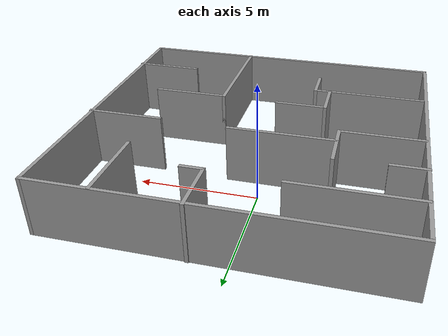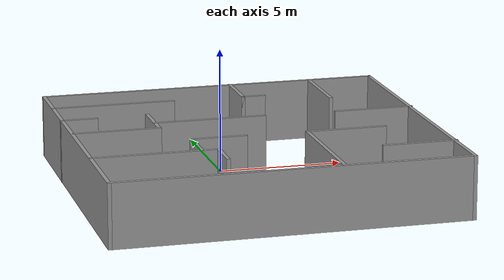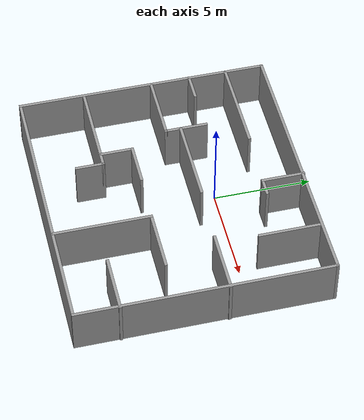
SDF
<?xml version='1.0'?>
<sdf version='1.7'>
  <model name='maze'>
    <pose>0.626394 -2.30371 0 0 -0 0</pose>
    <link name='Wall_11'>
      <collision name='Wall_11_Collision'>
        <geometry>
          <box>
            <size>5 0.15 2.5</size>
          </box>
        </geometry>
        <pose>0 0 1.25 0 -0 0</pose>
      </collision>
      <visual name='Wall_11_Visual'>
        <pose>0 0 1.25 0 -0 0</pose>
        <geometry>
          <box>
            <size>5 0.15 2.5</size>
          </box>
        </geometry>
        <material>
          <script>
            <uri>file://media/materials/scripts/gazebo.material</uri>
            <name>Gazebo/Grey</name>
          </script>
          <ambient>1 1 1 1</ambient>
        </material>
        <meta>
          <layer>0</layer>
        </meta>
      </visual>
      <pose>-4.47892 -3.12486 0 0 -0 0</pose>
    </link>
    <link name='Wall_12'>
      <collision name='Wall_12_Collision'>
        <geometry>
          <box>
            <size>1.5 0.15 2.5</size>
          </box>
        </geometry>
        <pose>0 0 1.25 0 -0 0</pose>
      </collision>
      <visual name='Wall_12_Visual'>
        <pose>0 0 1.25 0 -0 0</pose>
        <geometry>
          <box>
            <size>1.5 0.15 2.5</size>
          </box>
        </geometry>
        <material>
          <script>
            <uri>file://media/materials/scripts/gazebo.material</uri>
            <name>Gazebo/Grey</name>
          </script>
          <ambient>1 1 1 1</ambient>
        </material>
        <meta>
          <layer>0</layer>
        </meta>
      </visual>
      <pose>-2.05392 -3.79985 0 0 -0 -1.5708</pose>
    </link>
    <link name='Wall_14'>
      <collision name='Wall_14_Collision'>
        <geometry>
          <box>
            <size>3.5 0.15 2.5</size>
          </box>
        </geometry>
        <pose>0 0 1.25 0 -0 0</pose>
      </collision>
      <visual name='Wall_14_Visual'>
        <pose>0 0 1.25 0 -0 0</pose>
        <geometry>
          <box>
            <size>3.5 0.15 2.5</size>
          </box>
        </geometry>
        <material>
          <script>
            <uri>file://media/materials/scripts/gazebo.material</uri>
            <name>Gazebo/Grey</name>
          </script>
          <ambient>1 1 1 1</ambient>
        </material>
        <meta>
          <layer>0</layer>
        </meta>
      </visual>
      <pose>-5.19461 0.442885 0 0 -0 0</pose>
    </link>
    <link name='Wall_15'>
      <collision name='Wall_15_Collision'>
        <geometry>
          <box>
            <size>2.25 0.15 2.5</size>
          </box>
        </geometry>
        <pose>0 0 1.25 0 -0 0</pose>
      </collision>
      <visual name='Wall_15_Visual'>
        <pose>0 0 1.25 0 -0 0</pose>
        <geometry>
          <box>
            <size>2.25 0.15 2.5</size>
          </box>
        </geometry>
        <material>
          <script>
            <uri>file://media/materials/scripts/gazebo.material</uri>
            <name>Gazebo/Grey</name>
          </script>
          <ambient>1 1 1 1</ambient>
        </material>
        <meta>
          <layer>0</layer>
        </meta>
      </visual>
      <pose>-3.51961 1.49289 0 0 -0 1.5708</pose>
    </link>
    <link name='Wall_17'>
      <collision name='Wall_17_Collision'>
        <geometry>
          <box>
            <size>5 0.15 2.5</size>
          </box>
        </geometry>
        <pose>0 0 1.25 0 -0 0</pose>
      </collision>
      <visual name='Wall_17_Visual'>
        <pose>0 0 1.25 0 -0 0</pose>
        <geometry>
          <box>
            <size>5 0.15 2.5</size>
          </box>
        </geometry>
        <material>
          <script>
            <uri>file://media/materials/scripts/gazebo.material</uri>
            <name>Gazebo/Grey</name>
          </script>
          <ambient>1 1 1 1</ambient>
        </material>
        <meta>
          <layer>0</layer>
        </meta>
      </visual>
      <pose>1.86106 -3.976 0 0 -0 1.5708</pose>
    </link>
    <link name='Wall_18'>
      <collision name='Wall_18_Collision'>
        <geometry>
          <box>
            <size>3.25 0.15 2.5</size>
          </box>
        </geometry>
        <pose>0 0 1.25 0 -0 0</pose>
      </collision>
      <visual name='Wall_18_Visual'>
        <pose>0 0 1.25 0 -0 0</pose>
        <geometry>
          <box>
            <size>3.25 0.15 2.5</size>
          </box>
        </geometry>
        <material>
          <script>
            <uri>file://media/materials/scripts/gazebo.material</uri>
            <name>Gazebo/Grey</name>
          </script>
          <ambient>1 1 1 1</ambient>
        </material>
        <meta>
          <layer>0</layer>
        </meta>
      </visual>
      <pose>3.41106 -1.551 0 0 -0 0</pose>
    </link>
    <link name='Wall_2'>
      <collision name='Wall_2_Collision'>
        <geometry>
          <box>
            <size>14 0.15 2.5</size>
          </box>
        </geometry>
        <pose>0 0 1.25 0 -0 0</pose>
      </collision>
      <visual name='Wall_2_Visual'>
        <pose>0 0 1.25 0 -0 0</pose>
        <geometry>
          <box>
            <size>14 0.15 2.5</size>
          </box>
        </geometry>
        <material>
          <script>
            <uri>file://media/materials/scripts/gazebo.material</uri>
            <name>Gazebo/Grey</name>
          </script>
          <ambient>1 1 1 1</ambient>
        </material>
        <meta>
          <layer>0</layer>
        </meta>
      </visual>
      <pose>-0.021394 -6.44629 0 0 -0 0</pose>
    </link>
    <link name='Wall_20'>
      <collision name='Wall_20_Collision'>
        <geometry>
          <box>
            <size>4.5 0.15 2.5</size>
          </box>
        </geometry>
        <pose>0 0 1.25 0 -0 0</pose>
      </collision>
      <visual name='Wall_20_Visual'>
        <pose>0 0 1.25 0 -0 0</pose>
        <geometry>
          <box>
            <size>4.5 0.15 2.5</size>
          </box>
        </geometry>
        <material>
          <script>
            <uri>file://media/materials/scripts/gazebo.material</uri>
            <name>Gazebo/Grey</name>
          </script>
          <ambient>1 1 1 1</ambient>
        </material>
        <meta>
          <layer>0</layer>
        </meta>
      </visual>
      <pose>-1.2984 1.21475 0 0 -0 0</pose>
    </link>
    <link name='Wall_22'>
      <collision name='Wall_22_Collision'>
        <geometry>
          <box>
            <size>2.25 0.15 2.5</size>
          </box>
        </geometry>
        <pose>0 0 1.25 0 -0 0</pose>
      </collision>
      <visual name='Wall_22_Visual'>
        <pose>0 0 1.25 0 -0 0</pose>
        <geometry>
          <box>
            <size>2.25 0.15 2.5</size>
          </box>
        </geometry>
        <material>
          <script>
            <uri>file://media/materials/scripts/gazebo.material</uri>
            <name>Gazebo/Grey</name>
          </script>
          <ambient>1 1 1 1</ambient>
        </material>
        <meta>
          <layer>0</layer>
        </meta>
      </visual>
      <pose>0.866206 5.39629 0 0 -0 -1.5708</pose>
    </link>
    <link name='Wall_23'>
      <collision name='Wall_23_Collision'>
        <geometry>
          <box>
            <size>1 0.15 2.5</size>
          </box>
        </geometry>
        <pose>0 0 1.25 0 -0 0</pose>
      </collision>
      <visual name='Wall_23_Visual'>
        <pose>0 0 1.25 0 -0 0</pose>
        <geometry>
          <box>
            <size>1 0.15 2.5</size>
          </box>
        </geometry>
        <material>
          <script>
            <uri>file://media/materials/scripts/gazebo.material</uri>
            <name>Gazebo/Grey</name>
          </script>
          <ambient>1 1 1 1</ambient>
        </material>
        <meta>
          <layer>0</layer>
        </meta>
      </visual>
      <pose>1.29121 4.34629 0 0 -0 0</pose>
    </link>
    <link name='Wall_27'>
      <collision name='Wall_27_Collision'>
        <geometry>
          <box>
            <size>1.75 0.15 2.5</size>
          </box>
        </geometry>
        <pose>0 0 1.25 0 -0 0</pose>
      </collision>
      <visual name='Wall_27_Visual'>
        <pose>0 0 1.25 0 -0 0</pose>
        <geometry>
          <box>
            <size>1.75 0.15 2.5</size>
          </box>
        </geometry>
        <material>
          <script>
            <uri>file://media/materials/scripts/gazebo.material</uri>
            <name>Gazebo/Grey</name>
          </script>
          <ambient>1 1 1 1</ambient>
        </material>
        <meta>
          <layer>0</layer>
        </meta>
      </visual>
      <pose>-2.70153 -2.29055 0 0 -0 1.5708</pose>
    </link>
    <link name='Wall_28'>
      <collision name='Wall_28_Collision'>
        <geometry>
          <box>
            <size>2.25 0.15 2.5</size>
          </box>
        </geometry>
        <pose>0 0 1.25 0 -0 0</pose>
      </collision>
      <visual name='Wall_28_Visual'>
        <pose>0 0 1.25 0 -0 0</pose>
        <geometry>
          <box>
            <size>2.25 0.15 2.5</size>
          </box>
        </geometry>
        <material>
          <script>
            <uri>file://media/materials/scripts/gazebo.material</uri>
            <name>Gazebo/Grey</name>
          </script>
          <ambient>1 1 1 1</ambient>
        </material>
        <meta>
          <layer>0</layer>
        </meta>
      </visual>
      <pose>-1.65153 -1.49055 0 0 -0 0</pose>
    </link>
    <link name='Wall_3'>
      <collision name='Wall_3_Collision'>
        <geometry>
          <box>
            <size>13 0.15 2.5</size>
          </box>
        </geometry>
        <pose>0 0 1.25 0 -0 0</pose>
      </collision>
      <visual name='Wall_3_Visual'>
        <pose>0 0 1.25 0 -0 0</pose>
        <geometry>
          <box>
            <size>13 0.15 2.5</size>
          </box>
        </geometry>
        <material>
          <script>
            <uri>file://media/materials/scripts/gazebo.material</uri>
            <name>Gazebo/Grey</name>
          </script>
          <ambient>1 1 1 1</ambient>
        </material>
        <meta>
          <layer>0</layer>
        </meta>
      </visual>
      <pose>6.90361 -0.021294 0 0 -0 1.5708</pose>
    </link>
    <link name='Wall_30'>
      <collision name='Wall_30_Collision'>
        <geometry>
          <box>
            <size>3 0.15 2.5</size>
          </box>
        </geometry>
        <pose>0 0 1.25 0 -0 0</pose>
      </collision>
      <visual name='Wall_30_Visual'>
        <pose>0 0 1.25 0 -0 0</pose>
        <geometry>
          <box>
            <size>3 0.15 2.5</size>
          </box>
        </geometry>
        <material>
          <script>
            <uri>file://media/materials/scripts/gazebo.material</uri>
            <name>Gazebo/Grey</name>
          </script>
          <ambient>1 1 1 1</ambient>
        </material>
        <meta>
          <layer>0</layer>
        </meta>
      </visual>
      <pose>5.53038 -4.20547 0 0 -0 3.14159</pose>
    </link>
    <link name='Wall_32'>
      <collision name='Wall_32_Collision'>
        <geometry>
          <box>
            <size>3.25 0.15 2.5</size>
          </box>
        </geometry>
        <pose>0 0 1.25 0 -0 0</pose>
      </collision>
      <visual name='Wall_32_Visual'>
        <pose>0 0 1.25 0 -0 0</pose>
        <geometry>
          <box>
            <size>3.25 0.15 2.5</size>
          </box>
        </geometry>
        <material>
          <script>
            <uri>file://media/materials/scripts/gazebo.material</uri>
            <name>Gazebo/Grey</name>
          </script>
          <ambient>1 1 1 1</ambient>
        </material>
        <meta>
          <layer>0</layer>
        </meta>
      </visual>
      <pose>5.40538 1.12899 0 0 -0 3.14159</pose>
    </link>
    <link name='Wall_35'>
      <collision name='Wall_35_Collision'>
        <geometry>
          <box>
            <size>1.5 0.15 2.5</size>
          </box>
        </geometry>
        <pose>0 0 1.25 0 -0 0</pose>
      </collision>
      <visual name='Wall_35_Visual'>
        <pose>0 0 1.25 0 -0 0</pose>
        <geometry>
          <box>
            <size>1.5 0.15 2.5</size>
          </box>
        </geometry>
        <material>
          <script>
            <uri>file://media/materials/scripts/gazebo.material</uri>
            <name>Gazebo/Grey</name>
          </script>
          <ambient>1 1 1 1</ambient>
        </material>
        <meta>
          <layer>0</layer>
        </meta>
      </visual>
      <pose>-6.28038 2.48404 0 0 -0 0</pose>
    </link>
    <link name='Wall_4'>
      <collision name='Wall_4_Collision'>
        <geometry>
          <box>
            <size>14 0.15 2.5</size>
          </box>
        </geometry>
        <pose>0 0 1.25 0 -0 0</pose>
      </collision>
      <visual name='Wall_4_Visual'>
        <pose>0 0 1.25 0 -0 0</pose>
        <geometry>
          <box>
            <size>14 0.15 2.5</size>
          </box>
        </geometry>
        <material>
          <script>
            <uri>file://media/materials/scripts/gazebo.material</uri>
            <name>Gazebo/Grey</name>
          </script>
          <ambient>1 1 1 1</ambient>
        </material>
        <meta>
          <layer>0</layer>
        </meta>
      </visual>
      <pose>-0.021394 6.40371 0 0 -0 3.14159</pose>
    </link>
    <link name='Wall_5'>
      <collision name='Wall_5_Collision'>
        <geometry>
          <box>
            <size>13 0.15 2.5</size>
          </box>
        </geometry>
        <pose>0 0 1.25 0 -0 0</pose>
      </collision>
      <visual name='Wall_5_Visual'>
        <pose>0 0 1.25 0 -0 0</pose>
        <geometry>
          <box>
            <size>13 0.15 2.5</size>
          </box>
        </geometry>
        <material>
          <script>
            <uri>file://media/materials/scripts/gazebo.material</uri>
            <name>Gazebo/Grey</name>
          </script>
          <ambient>1 1 1 1</ambient>
        </material>
        <meta>
          <layer>0</layer>
        </meta>
      </visual>
      <pose>-6.94639 -0.021294 0 0 -0 -1.5708</pose>
    </link>
    <link name='Wall_7'>
      <collision name='Wall_7_Collision'>
        <geometry>
          <box>
            <size>5 0.15 2.5</size>
          </box>
        </geometry>
        <pose>0 0 1.25 0 -0 0</pose>
      </collision>
      <visual name='Wall_7_Visual'>
        <pose>0 0 1.25 0 -0 0</pose>
        <geometry>
          <box>
            <size>5 0.15 2.5</size>
          </box>
        </geometry>
        <material>
          <script>
            <uri>file://media/materials/scripts/gazebo.material</uri>
            <name>Gazebo/Grey</name>
          </script>
          <ambient>1 1 1 1</ambient>
        </material>
        <meta>
          <layer>0</layer>
        </meta>
      </visual>
      <pose>-4.49607 4.43944 0 0 -0 0</pose>
    </link>
    <link name='Wall_9'>
      <collision name='Wall_9_Collision'>
        <geometry>
          <box>
            <size>3.25 0.15 2.5</size>
          </box>
        </geometry>
        <pose>0 0 1.25 0 -0 0</pose>
      </collision>
      <visual name='Wall_9_Visual'>
        <pose>0 0 1.25 0 -0 0</pose>
        <geometry>
          <box>
            <size>3.25 0.15 2.5</size>
          </box>
        </geometry>
        <material>
          <script>
            <uri>file://media/materials/scripts/gazebo.material</uri>
            <name>Gazebo/Grey</name>
          </script>
          <ambient>1 1 1 1</ambient>
        </material>
        <meta>
          <layer>0</layer>
        </meta>
      </visual>
      <pose>4.26242 4.82768 0 0 -0 -1.5708</pose>
    </link>
    <static>1</static>
  </model>
</sdf>
